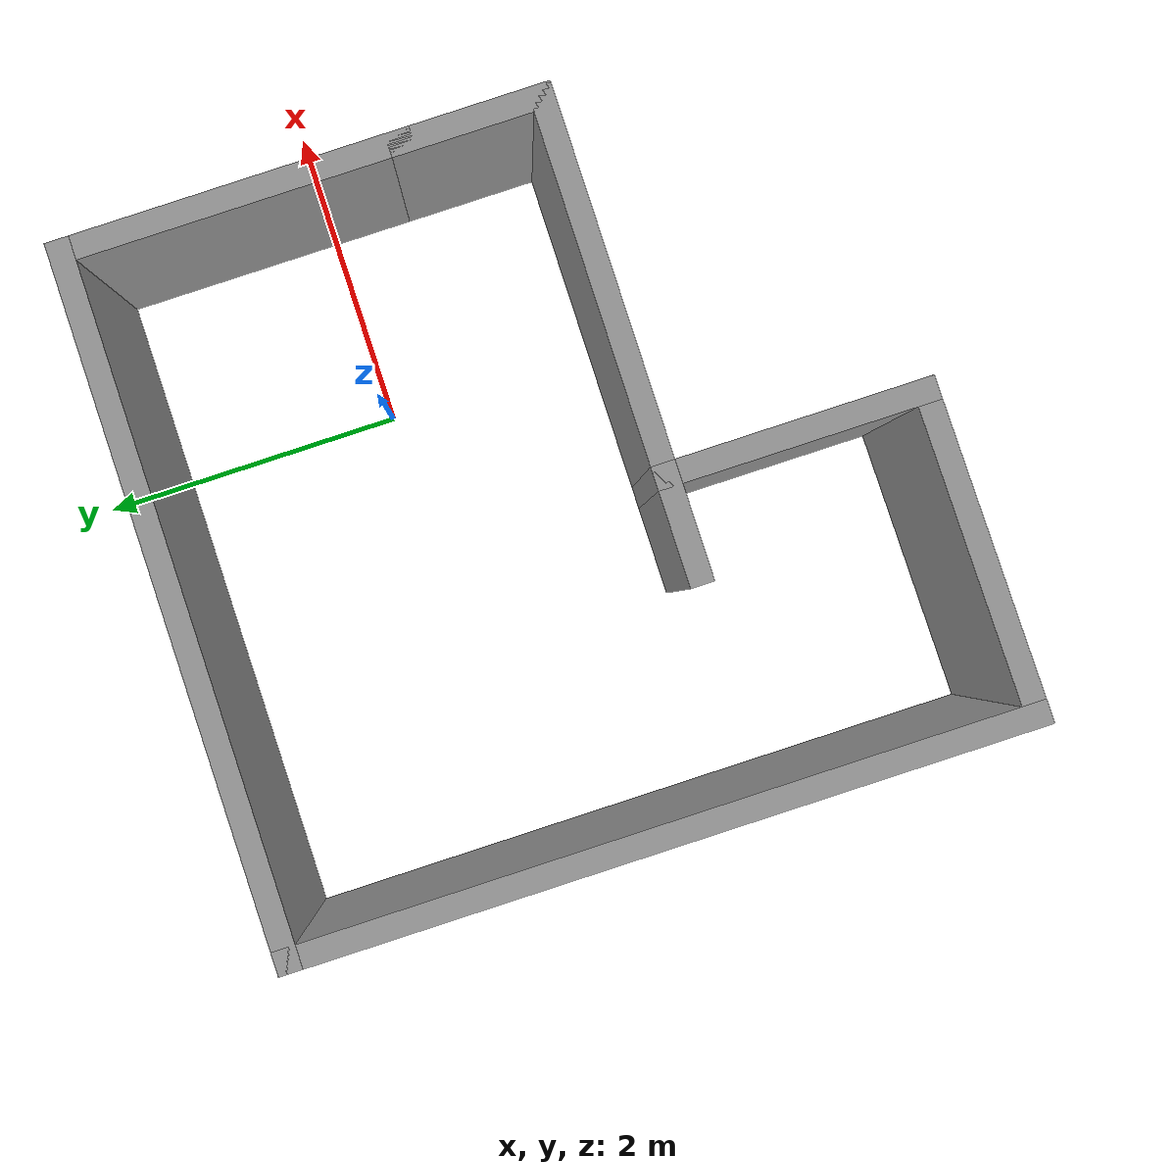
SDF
<?xml version='1.0'?>
<sdf version='1.7'>
  <model name='my_env'>
    <pose>-0.845439 -0.793989 0 0 -0 0</pose>
    <link name='Wall_0'>
      <collision name='Wall_0_Collision'>
        <geometry>
          <box>
            <size>1.75 0.15 2.5</size>
          </box>
        </geometry>
        <pose>0 0 1.25 0 -0 0</pose>
      </collision>
      <visual name='Wall_0_Visual'>
        <pose>0 0 1.25 0 -0 0</pose>
        <geometry>
          <box>
            <size>1.75 0.15 2.5</size>
          </box>
        </geometry>
        <material>
          <script>
            <uri>file://media/materials/scripts/gazebo.material</uri>
            <name>Gazebo/Grey</name>
          </script>
          <ambient>1 1 1 1</ambient>
        </material>
        <meta>
          <layer>0</layer>
        </meta>
      </visual>
      <pose>-0.174561 -1.47601 0 0 -0 1.5708</pose>
    </link>
    <link name='Wall_1'>
      <collision name='Wall_1_Collision'>
        <geometry>
          <box>
            <size>2.5 0.15 2.5</size>
          </box>
        </geometry>
        <pose>0 0 1.25 0 -0 0</pose>
      </collision>
      <visual name='Wall_1_Visual'>
        <pose>0 0 1.25 0 -0 0</pose>
        <geometry>
          <box>
            <size>2.5 0.15 2.5</size>
          </box>
        </geometry>
        <material>
          <script>
            <uri>file://media/materials/scripts/gazebo.material</uri>
            <name>Gazebo/Grey</name>
          </script>
          <ambient>1 1 1 1</ambient>
        </material>
        <meta>
          <layer>0</layer>
        </meta>
      </visual>
      <pose>1.00044 -0.676011 0 0 -0 0</pose>
    </link>
    <link name='Wall_10'>
      <collision name='Wall_10_Collision'>
        <geometry>
          <box>
            <size>0.75 0.15 2.5</size>
          </box>
        </geometry>
        <pose>0 0 1.25 0 -0 0</pose>
      </collision>
      <visual name='Wall_10_Visual'>
        <pose>0 0 1.25 0 -0 0</pose>
        <geometry>
          <box>
            <size>0.75 0.15 2.5</size>
          </box>
        </geometry>
        <material>
          <script>
            <uri>file://media/materials/scripts/gazebo.material</uri>
            <name>Gazebo/Grey</name>
          </script>
          <ambient>1 1 1 1</ambient>
        </material>
        <meta>
          <layer>0</layer>
        </meta>
      </visual>
      <pose>-0.474561 -0.676011 0 0 -0 3.14159</pose>
    </link>
    <link name='Wall_2'>
      <collision name='Wall_2_Collision'>
        <geometry>
          <box>
            <size>1.02645 0.15 2.5</size>
          </box>
        </geometry>
        <pose>0 0 1.25 0 -0 0</pose>
      </collision>
      <visual name='Wall_2_Visual'>
        <pose>0 0 1.25 0 -0 0</pose>
        <geometry>
          <box>
            <size>1.02645 0.15 2.5</size>
          </box>
        </geometry>
        <material>
          <script>
            <uri>file://media/materials/scripts/gazebo.material</uri>
            <name>Gazebo/Grey</name>
          </script>
          <ambient>1 1 1 1</ambient>
        </material>
        <meta>
          <layer>0</layer>
        </meta>
      </visual>
      <pose>2.17544 -0.237786 0 0 -0 1.5708</pose>
    </link>
    <link name='Wall_5'>
      <collision name='Wall_5_Collision'>
        <geometry>
          <box>
            <size>2.25 0.15 2.5</size>
          </box>
        </geometry>
        <pose>0 0 1.25 0 -0 0</pose>
      </collision>
      <visual name='Wall_5_Visual'>
        <pose>0 0 1.25 0 -0 0</pose>
        <geometry>
          <box>
            <size>2.25 0.15 2.5</size>
          </box>
        </geometry>
        <material>
          <script>
            <uri>file://media/materials/scripts/gazebo.material</uri>
            <name>Gazebo/Grey</name>
          </script>
          <ambient>1 1 1 1</ambient>
        </material>
        <meta>
          <layer>0</layer>
        </meta>
      </visual>
      <pose>2.17544 1.25044 0 0 -0 1.5708</pose>
    </link>
    <link name='Wall_6'>
      <collision name='Wall_6_Collision'>
        <geometry>
          <box>
            <size>4.5 0.15 2.5</size>
          </box>
        </geometry>
        <pose>0 0 1.25 0 -0 0</pose>
      </collision>
      <visual name='Wall_6_Visual'>
        <pose>0 0 1.25 0 -0 0</pose>
        <geometry>
          <box>
            <size>4.5 0.15 2.5</size>
          </box>
        </geometry>
        <material>
          <script>
            <uri>file://media/materials/scripts/gazebo.material</uri>
            <name>Gazebo/Grey</name>
          </script>
          <ambient>1 1 1 1</ambient>
        </material>
        <meta>
          <layer>0</layer>
        </meta>
      </visual>
      <pose>0.000439 2.30044 0 0 -0 3.14159</pose>
    </link>
    <link name='Wall_7'>
      <collision name='Wall_7_Collision'>
        <geometry>
          <box>
            <size>4.75 0.15 2.5</size>
          </box>
        </geometry>
        <pose>0 0 1.25 0 -0 0</pose>
      </collision>
      <visual name='Wall_7_Visual'>
        <pose>0 0 1.25 0 -0 0</pose>
        <geometry>
          <box>
            <size>4.75 0.15 2.5</size>
          </box>
        </geometry>
        <material>
          <script>
            <uri>file://media/materials/scripts/gazebo.material</uri>
            <name>Gazebo/Grey</name>
          </script>
          <ambient>1 1 1 1</ambient>
        </material>
        <meta>
          <layer>0</layer>
        </meta>
      </visual>
      <pose>-2.17456 0.000439 0 0 -0 -1.5708</pose>
    </link>
    <link name='Wall_8'>
      <collision name='Wall_8_Collision'>
        <geometry>
          <box>
            <size>2.15014 0.15 2.5</size>
          </box>
        </geometry>
        <pose>0 0 1.25 0 -0 0</pose>
      </collision>
      <visual name='Wall_8_Visual'>
        <pose>0 0 1.25 0 -0 0</pose>
        <geometry>
          <box>
            <size>2.15014 0.15 2.5</size>
          </box>
        </geometry>
        <material>
          <script>
            <uri>file://media/materials/scripts/gazebo.material</uri>
            <name>Gazebo/Grey</name>
          </script>
          <ambient>1 1 1 1</ambient>
        </material>
        <meta>
          <layer>0</layer>
        </meta>
      </visual>
      <pose>-1.17456 -2.28779 0 0 -0 0.011774</pose>
    </link>
    <static>1</static>
  </model>
</sdf>
